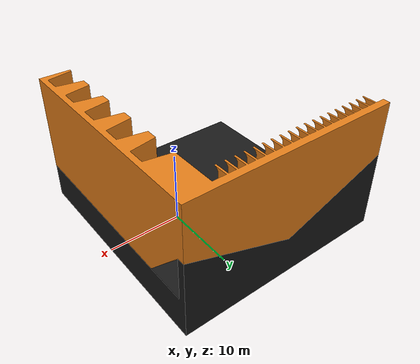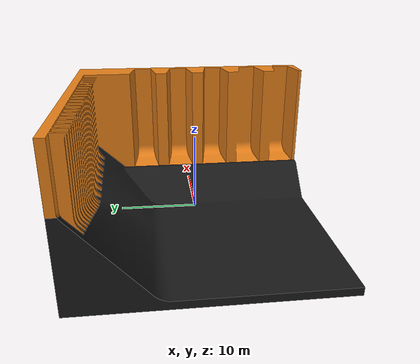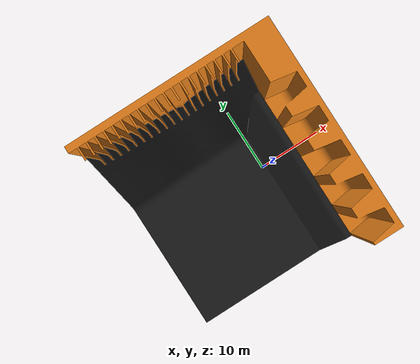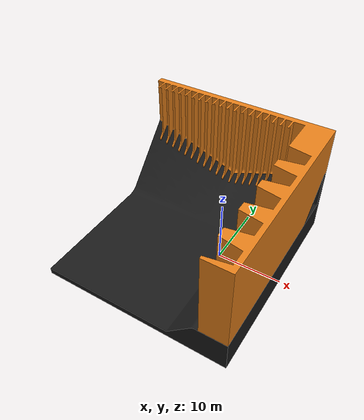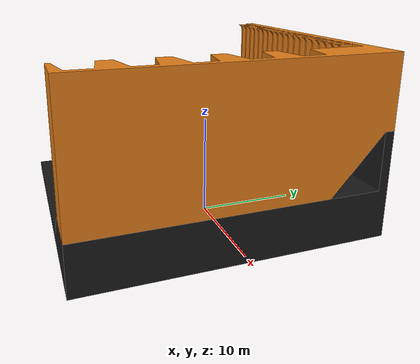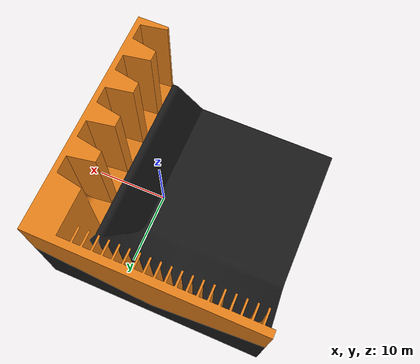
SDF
<?xml version="1.0" ?>
<sdf version="1.10">
    <world name="porao_samarco">
        <physics name="1ms" type="ignored">
            <max_step_size>0.001</max_step_size>
            <real_time_factor>1.0</real_time_factor>
        </physics>
        <plugin
            filename="gz-sim-physics-system"
            name="gz::sim::systems::Physics">
        </plugin>

        <plugin
            filename="gz-sim-user-commands-system"
            name="gz::sim::systems::UserCommands">
        </plugin>
        <plugin
            filename="gz-sim-scene-broadcaster-system"
            name="gz::sim::systems::SceneBroadcaster">
        </plugin>

        <physics name="default_physics" type="ode">
            <gravity>0 0 -9.8</gravity> <!-- Gravity vector: x=0, y=0, z=-9.8 -->
        </physics>

        <light type="directional" name="sun">
            <cast_shadows>false</cast_shadows>
            <pose>0 0 5 0 -1.5708 0.7854</pose>
            <diffuse>0.8 0.8 0.8 1</diffuse>
            <specular>0.2 0.2 0.2 1</specular>
            <attenuation>
                <range>1000</range>
                <constant>0.9</constant>
                <linear>0.01</linear>
                <quadratic>0.001</quadratic>
            </attenuation>
            <direction>-0.5 0.1 -0.9</direction>
        </light>
        <light type="point" name="lamp">
            <cast_shadows>false</cast_shadows>
            <pose>0 0 10 0 -1.5708 0.7854</pose>
            <diffuse>0.8 0.8 0.8 1</diffuse>
            <specular>0.2 0.2 0.2 1</specular>
            <attenuation>
                <range>1000</range>
                <constant>0.9</constant>
                <linear>0.01</linear>
                <quadratic>0.001</quadratic>
            </attenuation>
            <direction>-0.5 0.1 -0.9</direction>
        </light>

        <model name = "Corpo Porao">
            <static>true</static>
            <link name = "Link Corpo Porao 1">
                <pose> -20.5 15.5 -1 1.5708 0 0 </pose>
                <visual name = "visual">
                    <geometry>
                        <mesh>
                            <uri>file://src/automation_world/meshes/Parte_1.dae</uri>
                        </mesh>
                    </geometry>
                    <material>
                    		<diffuse>0.1 0.1 0.1 1</diffuse>
                    		<specular>0.1 0.1 0.1 1</specular>
                    </material>
                </visual>
                <collision name = "collision">
                    <geometry>
                        <mesh>
                            <uri>file://src/automation_world/meshes/Parte_1.dae</uri>
                        </mesh>
                        <scale>1 1 1</scale>
                    </geometry>
                </collision>
            </link>
            <link name = "Link Corpo Porao 2">
                <pose> -20.5 15.5 -1 1.5708 0 0 </pose>
                <visual name = "visual">
                    <geometry>
                        <mesh>
                            <uri>file://src/automation_world/meshes/Parte_2.dae</uri>
                        </mesh>
                    </geometry>
                    <material>
                    		<diffuse>0.9 0.5 0.1 1</diffuse>
                    		<specular>0.8 0.4 0.1 1</specular>
                    </material>
                </visual>
                <collision name = "collision">
                    <geometry>
                        <mesh>
                            <uri>file://src/automation_world/meshes/Parte_2.dae</uri>
                        </mesh>
                        <scale>1 1 1</scale>
                    </geometry>
                </collision>
            </link>
        </model>
    </world>
</sdf>
